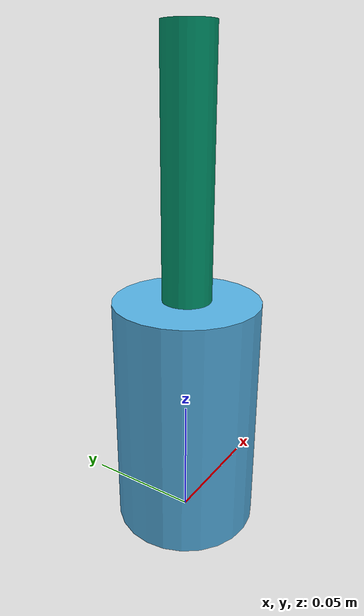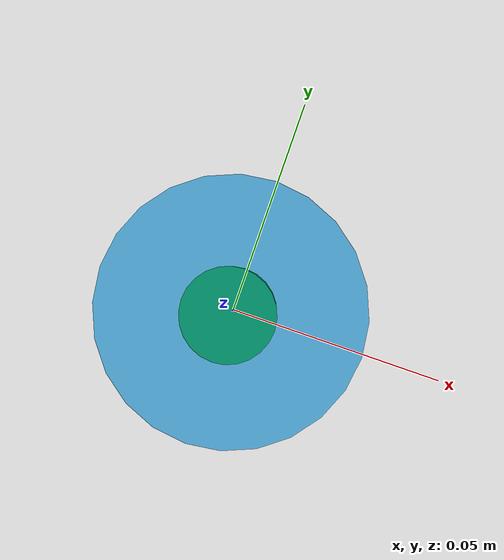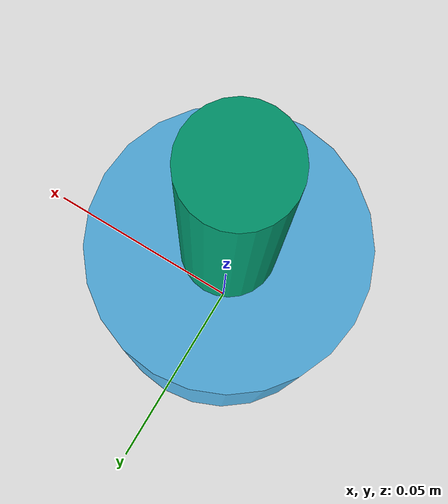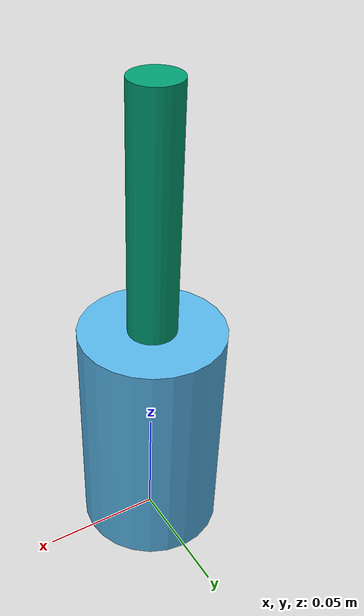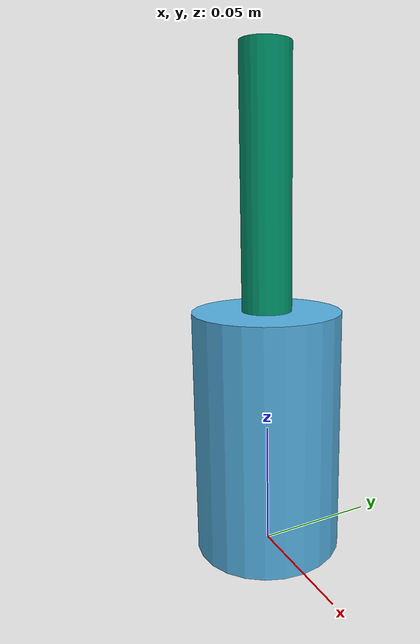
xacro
<?xml version="1.0"?>
<robot name="two_dof_robot">

  <link name="base_link">
  </link>

  <link name="link1">
    <visual>
      <origin xyz="0 0 0.05" rpy="0 0 0"/>
      <geometry>
        <cylinder radius="0.03" length="0.10"/>
      </geometry>
    </visual>
  </link>

  <link name="link2">
    <visual>
      <origin xyz="0 0 0.05" rpy="0 0 0"/>
      <geometry>
        <cylinder radius="0.01" length="0.10"/>
      </geometry>
    </visual>
  </link>

  <!-- Joint 1: Connects base_link to link1 -->
  <joint name="joint1" type="revolute">
    <axis xyz="0 0 1"/>
    <origin xyz="0 0 0" rpy="0 0 0"/>
    <parent link="base_link"/>
    <child link="link1"/>
    <limit lower="-3.14" upper="3.14" effort="10" velocity="1"/>
  </joint>

  <!-- Joint 2: Connects link1 to link2 but careful (z = 0.10) since link1 length is 0.10-->
  <joint name="joint2" type="revolute">
    <axis xyz="1 0 0"/>
    <origin xyz="0 0 0.10" rpy="0 0 0"/>
    <parent link="link1"/>
    <child link="link2"/>
    <limit lower="-1.57" upper="1.57" effort="10" velocity="1"/>
  </joint>

</robot>
